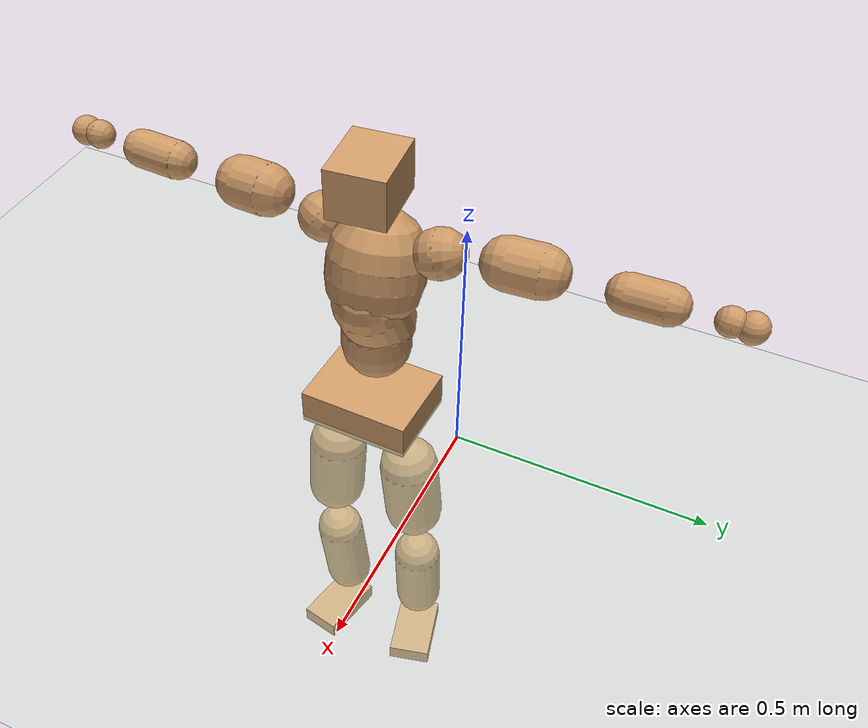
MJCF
<mujoco model="humanoid">
  <compiler coordinate="local" angle="radian"/>
  <default>
    <joint damping="0.0" armature="0.01" stiffness="0.0" limited="true"/>
    <geom conaffinity="1" condim="3" contype="7" margin="0.001" rgba="0.8 0.6 .4 1"/>
  </default>
  <asset>
    <texture type="skybox" builtin="gradient" rgb1=".4 .5 .6" rgb2="0 0 0" width="100" height="100"/>
    <texture builtin="flat" height="1278" mark="cross" markrgb="1 1 1" name="texgeom" random="0.01" rgb1="0.8 0.6 0.4" rgb2="0.8 0.6 0.4" type="cube" width="127"/>
    <texture builtin="checker" height="100" name="texplane" rgb1="0 0 0" rgb2="0.8 0.8 0.8" type="2d" width="100"/>
    <material name="MatPlane" reflectance="0.5" shininess="1" specular="1" texrepeat="60 60" texture="texplane"/>
    <material name="geom" texture="texgeom" texuniform="true"/>
  </asset>
  <worldbody>
    <light cutoff="100" diffuse="1 1 1" dir="-0 0 -1.3" directional="true" exponent="1" pos="0 0 1.3" specular=".1 .1 .1"/>
    <geom conaffinity="1" condim="3" name="floor" pos="0 0 0" rgba="0.8 0.9 0.8 1" size="100 100 .2" type="plane" material="MatPlane"/>
    <body name="Pelvis" pos="0.0002 -0.1865 0.0359">
      <freejoint name="Pelvis"/>
      <geom type="box" contype="1" conaffinity="1" density="5359.374745" pos="-0.0040 0.0001 -0.0116" size="0.0856 0.1119 0.0365" quat="0.9999 0.0000 0.0000 -0.0128" name="Pelvis"/>
      <body name="L_Hip" pos="-0.0004 0.0745 -0.081">
        <joint name="L_Hip_x" type="hinge" pos="0 0 0" axis="1 0 0" stiffness="1600" damping="160" armature="0.02" range="-180.0000 180.0000"/>
        <joint name="L_Hip_y" type="hinge" pos="0 0 0" axis="0 1 0" stiffness="1600" damping="160" armature="0.02" range="-180.0000 180.0000"/>
        <joint name="L_Hip_z" type="hinge" pos="0 0 0" axis="0 0 1" stiffness="1600" damping="160" armature="0.02" range="-180.0000 180.0000"/>
        <geom type="capsule" contype="1" conaffinity="1" density="2040.816327" size="0.0604" fromto="-0.0031 0.0066 -0.0901 -0.0080 0.0169 -0.2305" name="L_Hip"/>
        <body name="L_Knee" pos="-0.0111 0.0234 -0.3206">
          <joint name="L_Knee_x" type="hinge" pos="0 0 0" axis="1 0 0" stiffness="1600" damping="160" armature="0.02" range="-180.0000 180.0000"/>
          <joint name="L_Knee_y" type="hinge" pos="0 0 0" axis="0 1 0" stiffness="1600" damping="160" armature="0.02" range="-180.0000 180.0000"/>
          <joint name="L_Knee_z" type="hinge" pos="0 0 0" axis="0 0 1" stiffness="1600" damping="160" armature="0.02" range="-180.0000 180.0000"/>
          <geom type="capsule" contype="1" conaffinity="1" density="1234.567901" size="0.0503" fromto="-0.0097 -0.0023 -0.0797 -0.0313 -0.0073 -0.2562" name="L_Knee"/>
          <body name="L_Ankle" pos="-0.041 -0.0095 -0.3359">
            <joint name="L_Ankle_x" type="hinge" pos="0 0 0" axis="1 0 0" stiffness="1600" damping="160" armature="0.02" range="-180.0000 180.0000"/>
            <joint name="L_Ankle_y" type="hinge" pos="0 0 0" axis="0 1 0" stiffness="1600" damping="160" armature="0.02" range="-180.0000 180.0000"/>
            <joint name="L_Ankle_z" type="hinge" pos="0 0 0" axis="0 0 1" stiffness="1600" damping="160" armature="0.02" range="-180.0000 180.0000"/>
            <geom type="box" contype="1" conaffinity="1" density="1000" pos="0.0511 0.0131 -0.0246" size="0.0734 0.0453 0.018" quat="0.9921 0.0000 0.0000 0.1255" name="L_Ankle"/>
            <body name="L_Toe" pos="0.1022 0.0263 -0.0492">
              <joint name="L_Toe_x" type="hinge" pos="0 0 0" axis="1 0 0" stiffness="1000" damping="100" armature="0.02" range="-180.0000 180.0000"/>
              <joint name="L_Toe_y" type="hinge" pos="0 0 0" axis="0 1 0" stiffness="1000" damping="100" armature="0.02" range="-180.0000 180.0000"/>
              <joint name="L_Toe_z" type="hinge" pos="0 0 0" axis="0 0 1" stiffness="1000" damping="100" armature="0.02" range="-180.0000 180.0000"/>
              <geom type="box" contype="1" conaffinity="1" density="7813184.583147" pos="0.0000 0.0000 0.0250" size="0.0009 0.0022 0.0009" quat="0.9912 0.0000 0.0000 0.1321" name="L_Toe"/>
            </body>
          </body>
        </body>
      </body>
      <body name="R_Hip" pos="0.0022 -0.0736 -0.081">
        <joint name="R_Hip_x" type="hinge" pos="0 0 0" axis="1 0 0" stiffness="1600" damping="160" armature="0.02" range="-180.0000 180.0000"/>
        <joint name="R_Hip_y" type="hinge" pos="0 0 0" axis="0 1 0" stiffness="1600" damping="160" armature="0.02" range="-180.0000 180.0000"/>
        <joint name="R_Hip_z" type="hinge" pos="0 0 0" axis="0 0 1" stiffness="1600" damping="160" armature="0.02" range="-180.0000 180.0000"/>
        <geom type="capsule" contype="1" conaffinity="1" density="2040.816327" size="0.0599" fromto="-0.0032 -0.0080 -0.0894 -0.0085 -0.0211 -0.2373" name="R_Hip"/>
        <body name="R_Knee" pos="-0.0117 -0.0291 -0.3267">
          <joint name="R_Knee_x" type="hinge" pos="0 0 0" axis="1 0 0" stiffness="1600" damping="160" armature="0.02" range="-180.0000 180.0000"/>
          <joint name="R_Knee_y" type="hinge" pos="0 0 0" axis="0 1 0" stiffness="1600" damping="160" armature="0.02" range="-180.0000 180.0000"/>
          <joint name="R_Knee_z" type="hinge" pos="0 0 0" axis="0 0 1" stiffness="1600" damping="160" armature="0.02" range="-180.0000 180.0000"/>
          <geom type="capsule" contype="1" conaffinity="1" density="1234.567901" size="0.0506" fromto="-0.0093 0.0027 -0.0800 -0.0303 0.0088 -0.2594" name="R_Knee"/>
          <body name="R_Ankle" pos="-0.0396 0.0116 -0.3394">
            <joint name="R_Ankle_x" type="hinge" pos="0 0 0" axis="1 0 0" stiffness="1600" damping="160" armature="0.02" range="-180.0000 180.0000"/>
            <joint name="R_Ankle_y" type="hinge" pos="0 0 0" axis="0 1 0" stiffness="1600" damping="160" armature="0.02" range="-180.0000 180.0000"/>
            <joint name="R_Ankle_z" type="hinge" pos="0 0 0" axis="0 0 1" stiffness="1600" damping="160" armature="0.02" range="-180.0000 180.0000"/>
            <geom type="box" contype="1" conaffinity="1" density="999.99996" pos="0.0530 -0.0107 -0.0216" size="0.0746 0.0429 0.0188" quat="0.9951 0.0000 0.0000 -0.0992" name="R_Ankle"/>
            <body name="R_Toe" pos="0.106 -0.0214 -0.0432">
              <joint name="R_Toe_x" type="hinge" pos="0 0 0" axis="1 0 0" stiffness="1000" damping="100" armature="0.02" range="-180.0000 180.0000"/>
              <joint name="R_Toe_y" type="hinge" pos="0 0 0" axis="0 1 0" stiffness="1000" damping="100" armature="0.02" range="-180.0000 180.0000"/>
              <joint name="R_Toe_z" type="hinge" pos="0 0 0" axis="0 0 1" stiffness="1000" damping="100" armature="0.02" range="-180.0000 180.0000"/>
              <geom type="box" contype="1" conaffinity="1" density="7894136.395987" pos="0.0000 0.0000 0.0227" size="0.0009 0.0022 0.001" quat="0.9961 0.0000 0.0000 -0.0885" name="R_Toe"/>
            </body>
          </body>
        </body>
      </body>
      <body name="Torso" pos="-0.0255 -0.0003 0.0924">
        <joint name="Torso_x" type="hinge" pos="0 0 0" axis="1 0 0" stiffness="2000" damping="200" armature="0.02" range="-180.0000 180.0000"/>
        <joint name="Torso_y" type="hinge" pos="0 0 0" axis="0 1 0" stiffness="2000" damping="200" armature="0.02" range="-180.0000 180.0000"/>
        <joint name="Torso_z" type="hinge" pos="0 0 0" axis="0 0 1" stiffness="2000" damping="200" armature="0.02" range="-180.0000 180.0000"/>
        <geom type="capsule" contype="1" conaffinity="1" density="2040.816327" size="0.0691" fromto="-0.0015 0.0008 0.0691 -0.0006 0.0003 0.0284" name="Torso"/>
        <body name="Spine" pos="-0.0021 0.0012 0.0975">
          <joint name="Spine_x" type="hinge" pos="0 0 0" axis="1 0 0" stiffness="2000" damping="200" armature="0.02" range="-180.0000 180.0000"/>
          <joint name="Spine_y" type="hinge" pos="0 0 0" axis="0 1 0" stiffness="2000" damping="200" armature="0.02" range="-180.0000 180.0000"/>
          <joint name="Spine_z" type="hinge" pos="0 0 0" axis="0 0 1" stiffness="2000" damping="200" armature="0.02" range="-180.0000 180.0000"/>
          <geom type="capsule" contype="1" conaffinity="1" density="2040.816327" size="0.0721" fromto="0.0343 0.0021 0.0634 -0.0113 -0.0007 -0.0209" name="Spine"/>
          <body name="Chest" pos="0.023 0.0014 0.0425">
            <joint name="Chest_x" type="hinge" pos="0 0 0" axis="1 0 0" stiffness="2000" damping="200" armature="0.02" range="-180.0000 180.0000"/>
            <joint name="Chest_y" type="hinge" pos="0 0 0" axis="0 1 0" stiffness="2000" damping="200" armature="0.02" range="-180.0000 180.0000"/>
            <joint name="Chest_z" type="hinge" pos="0 0 0" axis="0 0 1" stiffness="2000" damping="200" armature="0.02" range="-180.0000 180.0000"/>
            <geom type="capsule" contype="1" conaffinity="1" density="2040.816327" size="0.0946" fromto="-0.0293 -0.0012 0.0899 -0.0170 -0.0007 0.0522" name="Chest"/>
            <body name="Neck" pos="-0.0595 -0.0025 0.1984">
              <joint name="Neck_x" type="hinge" pos="0 0 0" axis="1 0 0" stiffness="1000" damping="100" armature="0.02" range="-180.0000 180.0000"/>
              <joint name="Neck_y" type="hinge" pos="0 0 0" axis="0 1 0" stiffness="1000" damping="100" armature="0.02" range="-180.0000 180.0000"/>
              <joint name="Neck_z" type="hinge" pos="0 0 0" axis="0 0 1" stiffness="1000" damping="100" armature="0.02" range="-180.0000 180.0000"/>
              <geom type="capsule" contype="1" conaffinity="1" density="1000" size="0.0391" fromto="0.0241 0.0015 0.0307 0.0177 0.0011 0.0226" name="Neck"/>
              <body name="Head" pos="0.0418 0.0025 0.0534">
                <joint name="Head_x" type="hinge" pos="0 0 0" axis="1 0 0" stiffness="1000" damping="100" armature="0.02" range="-180.0000 180.0000"/>
                <joint name="Head_y" type="hinge" pos="0 0 0" axis="0 1 0" stiffness="1000" damping="100" armature="0.02" range="-180.0000 180.0000"/>
                <joint name="Head_z" type="hinge" pos="0 0 0" axis="0 0 1" stiffness="1000" damping="100" armature="0.02" range="-180.0000 180.0000"/>
                <geom type="box" contype="1" conaffinity="1" density="2250.000045" pos="0.0219 0.0023 0.0277" size="0.0686 0.0563 0.0494" quat="0.9987 0.0000 0.0000 0.0515" name="Head"/>
              </body>
            </body>
            <body name="L_Thorax" pos="-0.0375 0.0739 0.1145">
              <joint name="L_Thorax_x" type="hinge" pos="0 0 0" axis="1 0 0" stiffness="1000" damping="100" armature="0.02" range="-180.0000 180.0000"/>
              <joint name="L_Thorax_y" type="hinge" pos="0 0 0" axis="0 1 0" stiffness="1000" damping="100" armature="0.02" range="-180.0000 180.0000"/>
              <joint name="L_Thorax_z" type="hinge" pos="0 0 0" axis="0 0 1" stiffness="1000" damping="100" armature="0.02" range="-180.0000 180.0000"/>
              <geom type="capsule" contype="1" conaffinity="1" density="1000" size="0.0481" fromto="-0.0046 0.0454 0.0151 -0.0039 0.0390 0.0129" name="L_Thorax"/>
              <body name="L_Shoulder" pos="-0.0085 0.0844 0.028">
                <joint name="L_Shoulder_x" type="hinge" pos="0 0 0" axis="1 0 0" stiffness="1000" damping="100" armature="0.02" range="-720.0000 720.0000"/>
                <joint name="L_Shoulder_y" type="hinge" pos="0 0 0" axis="0 1 0" stiffness="1000" damping="100" armature="0.02" range="-720.0000 720.0000"/>
                <joint name="L_Shoulder_z" type="hinge" pos="0 0 0" axis="0 0 1" stiffness="1000" damping="100" armature="0.02" range="-720.0000 720.0000"/>
                <geom type="capsule" contype="1" conaffinity="1" density="1000" size="0.0498" fromto="-0.0074 0.0794 -0.0014 -0.0134 0.1439 -0.0025" name="L_Shoulder"/>
                <body name="L_Elbow" pos="-0.0208 0.2233 -0.0038">
                  <joint name="L_Elbow_x" type="hinge" pos="0 0 0" axis="1 0 0" stiffness="1000" damping="100" armature="0.02" range="-720.0000 720.0000"/>
                  <joint name="L_Elbow_y" type="hinge" pos="0 0 0" axis="0 1 0" stiffness="1000" damping="100" armature="0.02" range="-720.0000 720.0000"/>
                  <joint name="L_Elbow_z" type="hinge" pos="0 0 0" axis="0 0 1" stiffness="1000" damping="100" armature="0.02" range="-720.0000 720.0000"/>
                  <geom type="capsule" contype="1" conaffinity="1" density="1000" size="0.0375" fromto="-0.0001 0.0675 0.0022 -0.0001 0.1409 0.0047" name="L_Elbow"/>
                  <body name="L_Wrist" pos="-0.0002 0.2084 0.0069">
                    <joint name="L_Wrist_x" type="hinge" pos="0 0 0" axis="1 0 0" stiffness="600" damping="60" armature="0.02" range="-180.0000 180.0000"/>
                    <joint name="L_Wrist_y" type="hinge" pos="0 0 0" axis="0 1 0" stiffness="600" damping="60" armature="0.02" range="-180.0000 180.0000"/>
                    <joint name="L_Wrist_z" type="hinge" pos="0 0 0" axis="0 0 1" stiffness="600" damping="60" armature="0.02" range="-180.0000 180.0000"/>
                    <geom type="capsule" contype="1" conaffinity="1" density="1000" size="0.0274" fromto="-0.0056 0.0345 -0.0041 -0.0059 0.0365 -0.0044" name="L_Wrist"/>
                    <body name="L_Hand" pos="-0.0115 0.071 -0.0085">
                      <joint name="L_Hand_x" type="hinge" pos="0 0 0" axis="1 0 0" stiffness="600" damping="60" armature="0.02" range="-180.0000 180.0000"/>
                      <joint name="L_Hand_y" type="hinge" pos="0 0 0" axis="0 1 0" stiffness="600" damping="60" armature="0.02" range="-180.0000 180.0000"/>
                      <joint name="L_Hand_z" type="hinge" pos="0 0 0" axis="0 0 1" stiffness="600" damping="60" armature="0.02" range="-180.0000 180.0000"/>
                      <geom type="sphere" contype="1" conaffinity="1" density="1000" size="0.0288" pos="0.0000 0.0000 0.0000" name="L_Hand"/>
                    </body>
                  </body>
                </body>
              </body>
            </body>
            <body name="R_Thorax" pos="-0.0417 -0.0769 0.1136">
              <joint name="R_Thorax_x" type="hinge" pos="0 0 0" axis="1 0 0" stiffness="1000" damping="100" armature="0.02" range="-180.0000 180.0000"/>
              <joint name="R_Thorax_y" type="hinge" pos="0 0 0" axis="0 1 0" stiffness="1000" damping="100" armature="0.02" range="-180.0000 180.0000"/>
              <joint name="R_Thorax_z" type="hinge" pos="0 0 0" axis="0 0 1" stiffness="1000" damping="100" armature="0.02" range="-180.0000 180.0000"/>
              <geom type="capsule" contype="1" conaffinity="1" density="1000" size="0.0471" fromto="-0.0058 -0.0439 0.0160 -0.0055 -0.0419 0.0152" name="R_Thorax"/>
              <body name="R_Shoulder" pos="-0.0113 -0.0858 0.0312">
                <joint name="R_Shoulder_x" type="hinge" pos="0 0 0" axis="1 0 0" stiffness="1000" damping="100" armature="0.02" range="-720.0000 720.0000"/>
                <joint name="R_Shoulder_y" type="hinge" pos="0 0 0" axis="0 1 0" stiffness="1000" damping="100" armature="0.02" range="-720.0000 720.0000"/>
                <joint name="R_Shoulder_z" type="hinge" pos="0 0 0" axis="0 0 1" stiffness="1000" damping="100" armature="0.02" range="-720.0000 720.0000"/>
                <geom type="capsule" contype="1" conaffinity="1" density="1000" size="0.0509" fromto="-0.0063 -0.0806 -0.0033 -0.0108 -0.1387 -0.0057" name="R_Shoulder"/>
                <body name="R_Elbow" pos="-0.0171 -0.2193 -0.009">
                  <joint name="R_Elbow_x" type="hinge" pos="0 0 0" axis="1 0 0" stiffness="1000" damping="100" armature="0.02" range="-720.0000 720.0000"/>
                  <joint name="R_Elbow_y" type="hinge" pos="0 0 0" axis="0 1 0" stiffness="1000" damping="100" armature="0.02" range="-720.0000 720.0000"/>
                  <joint name="R_Elbow_z" type="hinge" pos="0 0 0" axis="0 0 1" stiffness="1000" damping="100" armature="0.02" range="-720.0000 720.0000"/>
                  <geom type="capsule" contype="1" conaffinity="1" density="1000" size="0.0377" fromto="-0.0009 -0.0676 0.0026 -0.0019 -0.1479 0.0056" name="R_Elbow"/>
                  <body name="R_Wrist" pos="-0.0028 -0.2155 0.0082">
                    <joint name="R_Wrist_x" type="hinge" pos="0 0 0" axis="1 0 0" stiffness="600" damping="60" armature="0.02" range="-180.0000 180.0000"/>
                    <joint name="R_Wrist_y" type="hinge" pos="0 0 0" axis="0 1 0" stiffness="600" damping="60" armature="0.02" range="-180.0000 180.0000"/>
                    <joint name="R_Wrist_z" type="hinge" pos="0 0 0" axis="0 0 1" stiffness="600" damping="60" armature="0.02" range="-180.0000 180.0000"/>
                    <geom type="capsule" contype="1" conaffinity="1" density="1000" size="0.0283" fromto="-0.0046 -0.0351 -0.0032 -0.0048 -0.0371 -0.0034" name="R_Wrist"/>
                    <body name="R_Hand" pos="-0.0094 -0.0722 -0.0067">
                      <joint name="R_Hand_x" type="hinge" pos="0 0 0" axis="1 0 0" stiffness="600" damping="60" armature="0.02" range="-180.0000 180.0000"/>
                      <joint name="R_Hand_y" type="hinge" pos="0 0 0" axis="0 1 0" stiffness="600" damping="60" armature="0.02" range="-180.0000 180.0000"/>
                      <joint name="R_Hand_z" type="hinge" pos="0 0 0" axis="0 0 1" stiffness="600" damping="60" armature="0.02" range="-180.0000 180.0000"/>
                      <geom type="sphere" contype="1" conaffinity="1" density="1000" size="0.0293" pos="0.0000 0.0000 0.0000" name="R_Hand"/>
                    </body>
                  </body>
                </body>
              </body>
            </body>
          </body>
        </body>
      </body>
    </body>
  </worldbody>
  <actuator>
    <motor name="L_Hip_x" joint="L_Hip_x" gear="500"/>
    <motor name="L_Hip_y" joint="L_Hip_y" gear="500"/>
    <motor name="L_Hip_z" joint="L_Hip_z" gear="500"/>
    <motor name="L_Knee_x" joint="L_Knee_x" gear="500"/>
    <motor name="L_Knee_y" joint="L_Knee_y" gear="500"/>
    <motor name="L_Knee_z" joint="L_Knee_z" gear="500"/>
    <motor name="L_Ankle_x" joint="L_Ankle_x" gear="500"/>
    <motor name="L_Ankle_y" joint="L_Ankle_y" gear="500"/>
    <motor name="L_Ankle_z" joint="L_Ankle_z" gear="500"/>
    <motor name="L_Toe_x" joint="L_Toe_x" gear="500"/>
    <motor name="L_Toe_y" joint="L_Toe_y" gear="500"/>
    <motor name="L_Toe_z" joint="L_Toe_z" gear="500"/>
    <motor name="R_Hip_x" joint="R_Hip_x" gear="500"/>
    <motor name="R_Hip_y" joint="R_Hip_y" gear="500"/>
    <motor name="R_Hip_z" joint="R_Hip_z" gear="500"/>
    <motor name="R_Knee_x" joint="R_Knee_x" gear="500"/>
    <motor name="R_Knee_y" joint="R_Knee_y" gear="500"/>
    <motor name="R_Knee_z" joint="R_Knee_z" gear="500"/>
    <motor name="R_Ankle_x" joint="R_Ankle_x" gear="500"/>
    <motor name="R_Ankle_y" joint="R_Ankle_y" gear="500"/>
    <motor name="R_Ankle_z" joint="R_Ankle_z" gear="500"/>
    <motor name="R_Toe_x" joint="R_Toe_x" gear="500"/>
    <motor name="R_Toe_y" joint="R_Toe_y" gear="500"/>
    <motor name="R_Toe_z" joint="R_Toe_z" gear="500"/>
    <motor name="Torso_x" joint="Torso_x" gear="500"/>
    <motor name="Torso_y" joint="Torso_y" gear="500"/>
    <motor name="Torso_z" joint="Torso_z" gear="500"/>
    <motor name="Spine_x" joint="Spine_x" gear="500"/>
    <motor name="Spine_y" joint="Spine_y" gear="500"/>
    <motor name="Spine_z" joint="Spine_z" gear="500"/>
    <motor name="Chest_x" joint="Chest_x" gear="500"/>
    <motor name="Chest_y" joint="Chest_y" gear="500"/>
    <motor name="Chest_z" joint="Chest_z" gear="500"/>
    <motor name="Neck_x" joint="Neck_x" gear="500"/>
    <motor name="Neck_y" joint="Neck_y" gear="500"/>
    <motor name="Neck_z" joint="Neck_z" gear="500"/>
    <motor name="Head_x" joint="Head_x" gear="500"/>
    <motor name="Head_y" joint="Head_y" gear="500"/>
    <motor name="Head_z" joint="Head_z" gear="500"/>
    <motor name="L_Thorax_x" joint="L_Thorax_x" gear="500"/>
    <motor name="L_Thorax_y" joint="L_Thorax_y" gear="500"/>
    <motor name="L_Thorax_z" joint="L_Thorax_z" gear="500"/>
    <motor name="L_Shoulder_x" joint="L_Shoulder_x" gear="500"/>
    <motor name="L_Shoulder_y" joint="L_Shoulder_y" gear="500"/>
    <motor name="L_Shoulder_z" joint="L_Shoulder_z" gear="500"/>
    <motor name="L_Elbow_x" joint="L_Elbow_x" gear="500"/>
    <motor name="L_Elbow_y" joint="L_Elbow_y" gear="500"/>
    <motor name="L_Elbow_z" joint="L_Elbow_z" gear="500"/>
    <motor name="L_Wrist_x" joint="L_Wrist_x" gear="500"/>
    <motor name="L_Wrist_y" joint="L_Wrist_y" gear="500"/>
    <motor name="L_Wrist_z" joint="L_Wrist_z" gear="500"/>
    <motor name="L_Hand_x" joint="L_Hand_x" gear="500"/>
    <motor name="L_Hand_y" joint="L_Hand_y" gear="500"/>
    <motor name="L_Hand_z" joint="L_Hand_z" gear="500"/>
    <motor name="R_Thorax_x" joint="R_Thorax_x" gear="500"/>
    <motor name="R_Thorax_y" joint="R_Thorax_y" gear="500"/>
    <motor name="R_Thorax_z" joint="R_Thorax_z" gear="500"/>
    <motor name="R_Shoulder_x" joint="R_Shoulder_x" gear="500"/>
    <motor name="R_Shoulder_y" joint="R_Shoulder_y" gear="500"/>
    <motor name="R_Shoulder_z" joint="R_Shoulder_z" gear="500"/>
    <motor name="R_Elbow_x" joint="R_Elbow_x" gear="500"/>
    <motor name="R_Elbow_y" joint="R_Elbow_y" gear="500"/>
    <motor name="R_Elbow_z" joint="R_Elbow_z" gear="500"/>
    <motor name="R_Wrist_x" joint="R_Wrist_x" gear="500"/>
    <motor name="R_Wrist_y" joint="R_Wrist_y" gear="500"/>
    <motor name="R_Wrist_z" joint="R_Wrist_z" gear="500"/>
    <motor name="R_Hand_x" joint="R_Hand_x" gear="500"/>
    <motor name="R_Hand_y" joint="R_Hand_y" gear="500"/>
    <motor name="R_Hand_z" joint="R_Hand_z" gear="500"/>
  </actuator>
  <contact>
    <exclude body1="Torso" body2="Chest"/>
    <exclude body1="Head" body2="Chest"/>
    <exclude body1="R_Knee" body2="R_Toe"/>
    <exclude body1="R_Knee" body2="L_Ankle"/>
    <exclude body1="R_Knee" body2="L_Toe"/>
    <exclude body1="L_Knee" body2="L_Toe"/>
    <exclude body1="L_Knee" body2="R_Ankle"/>
    <exclude body1="L_Knee" body2="R_Toe"/>
    <exclude body1="L_Shoulder" body2="Chest"/>
    <exclude body1="R_Shoulder" body2="Chest"/>
  </contact>
  <sensor/>
  <size njmax="700" nconmax="700"/>
</mujoco>
